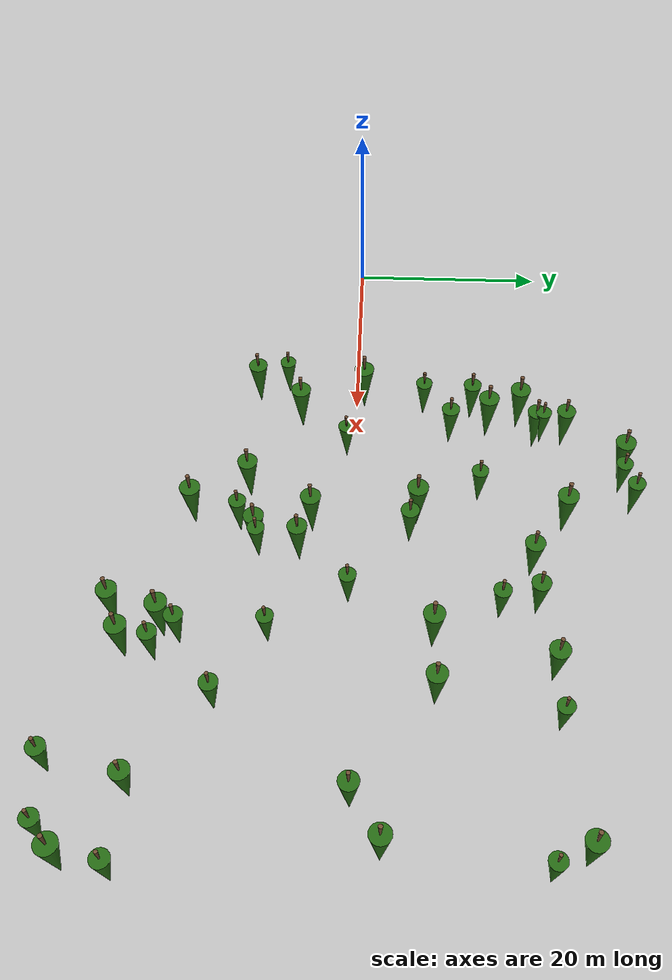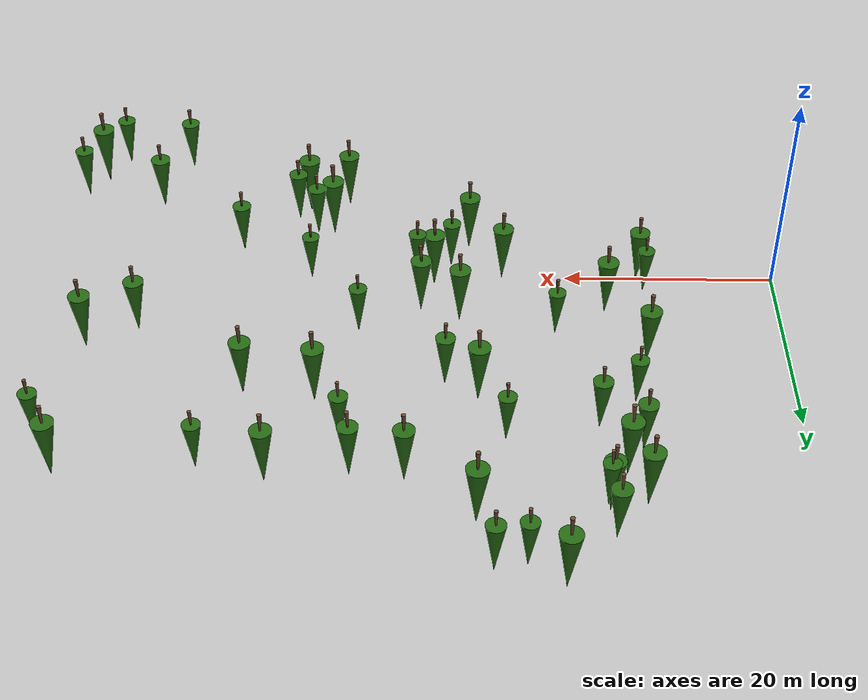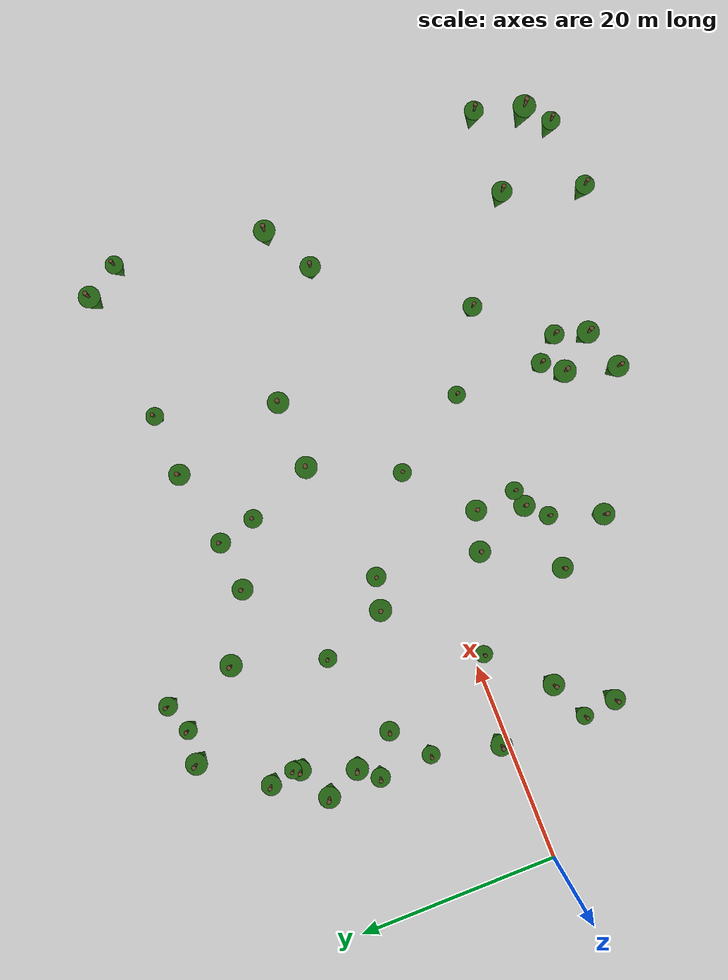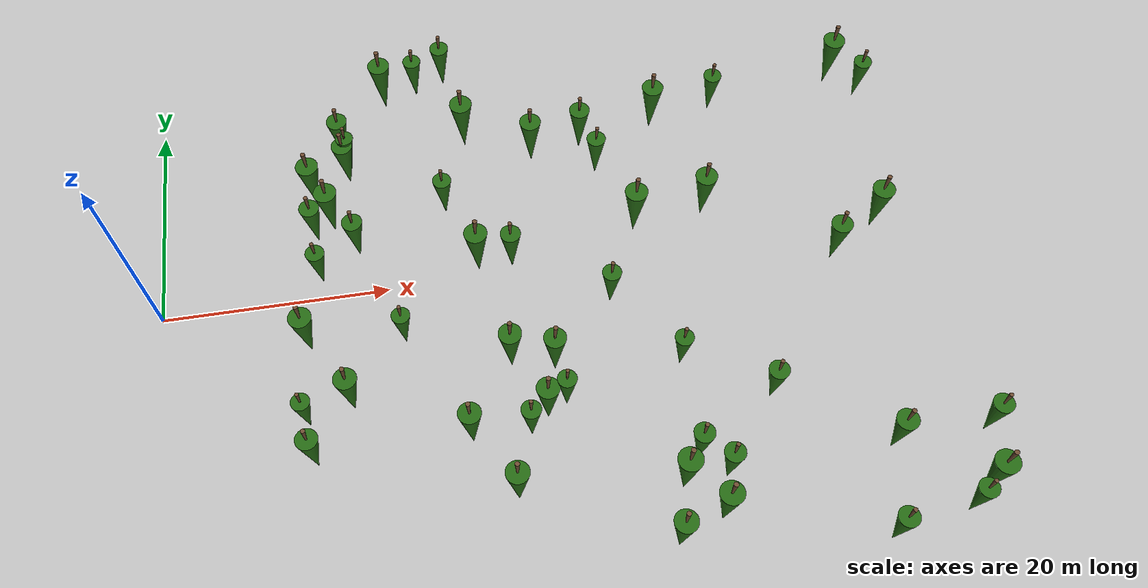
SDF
<sdf version="1.10">
 <model name="lehrforst_trees">
  <static>true</static>
  <link name="tree_0568">
   <collision name="tree_0568_collision">
    <pose>14.127 14.897 -4.623 3.142 0.031 0</pose>
    <geometry><cone><radius>0.231</radius><length>3.696</length></cone></geometry>
   </collision>
   <visual name="tree_0568_trunk">
    <pose>14.127 14.897 -4.623 3.142 0.031 0</pose>
    <geometry><cone><radius>0.231</radius><length>3.696</length></cone></geometry>
    <material>
     <ambient>0.42 0.29 0.19 1</ambient>
     <diffuse>0.42 0.29 0.19 1</diffuse>
     <specular>0.42 0.29 0.19 1</specular>
    </material>
   </visual>
   <visual name="tree_0568_leaves">
    <pose>14.127 14.897 -8.319 3.142 0 0</pose>
    <geometry><cone><radius>1.155</radius><length>6.930</length></cone></geometry>
    <material>
     <ambient>0.14 0.40 0.07 1</ambient>
     <diffuse>0.14 0.40 0.07 1</diffuse>
     <specular>0.14 0.40 0.07 1</specular>
    </material>
   </visual>
  </link>
  <link name="tree_0573">
   <collision name="tree_0573_collision">
    <pose>43.565 -19.042 -2.185 3.142 0.017 0</pose>
    <geometry><cone><radius>0.230</radius><length>3.680</length></cone></geometry>
   </collision>
   <visual name="tree_0573_trunk">
    <pose>43.565 -19.042 -2.185 3.142 0.017 0</pose>
    <geometry><cone><radius>0.230</radius><length>3.680</length></cone></geometry>
    <material>
     <ambient>0.42 0.29 0.19 1</ambient>
     <diffuse>0.42 0.29 0.19 1</diffuse>
     <specular>0.42 0.29 0.19 1</specular>
    </material>
   </visual>
   <visual name="tree_0573_leaves">
    <pose>43.565 -19.042 -5.865 3.142 0 0</pose>
    <geometry><cone><radius>1.150</radius><length>6.900</length></cone></geometry>
    <material>
     <ambient>0.14 0.40 0.07 1</ambient>
     <diffuse>0.14 0.40 0.07 1</diffuse>
     <specular>0.14 0.40 0.07 1</specular>
    </material>
   </visual>
  </link>
  <link name="tree_0576">
   <collision name="tree_0576_collision">
    <pose>28.706 22.664 -3.195 3.142 0.006 0</pose>
    <geometry><cone><radius>0.229</radius><length>3.664</length></cone></geometry>
   </collision>
   <visual name="tree_0576_trunk">
    <pose>28.706 22.664 -3.195 3.142 0.006 0</pose>
    <geometry><cone><radius>0.229</radius><length>3.664</length></cone></geometry>
    <material>
     <ambient>0.42 0.29 0.19 1</ambient>
     <diffuse>0.42 0.29 0.19 1</diffuse>
     <specular>0.42 0.29 0.19 1</specular>
    </material>
   </visual>
   <visual name="tree_0576_leaves">
    <pose>28.706 22.664 -6.859 3.142 0 0</pose>
    <geometry><cone><radius>1.145</radius><length>6.870</length></cone></geometry>
    <material>
     <ambient>0.14 0.40 0.07 1</ambient>
     <diffuse>0.14 0.40 0.07 1</diffuse>
     <specular>0.14 0.40 0.07 1</specular>
    </material>
   </visual>
  </link>
  <link name="tree_0578">
   <collision name="tree_0578_collision">
    <pose>12.466 18.606 -4.920 3.142 0.001 0</pose>
    <geometry><cone><radius>0.228</radius><length>3.648</length></cone></geometry>
   </collision>
   <visual name="tree_0578_trunk">
    <pose>12.466 18.606 -4.920 3.142 0.001 0</pose>
    <geometry><cone><radius>0.228</radius><length>3.648</length></cone></geometry>
    <material>
     <ambient>0.42 0.29 0.19 1</ambient>
     <diffuse>0.42 0.29 0.19 1</diffuse>
     <specular>0.42 0.29 0.19 1</specular>
    </material>
   </visual>
   <visual name="tree_0578_leaves">
    <pose>12.466 18.606 -8.568 3.142 0 0</pose>
    <geometry><cone><radius>1.140</radius><length>6.840</length></cone></geometry>
    <material>
     <ambient>0.14 0.40 0.07 1</ambient>
     <diffuse>0.14 0.40 0.07 1</diffuse>
     <specular>0.14 0.40 0.07 1</specular>
    </material>
   </visual>
  </link>
  <link name="tree_0582">
   <collision name="tree_0582_collision">
    <pose>28.302 6.736 -2.896 3.142 0.034 0</pose>
    <geometry><cone><radius>0.227</radius><length>3.632</length></cone></geometry>
   </collision>
   <visual name="tree_0582_trunk">
    <pose>28.302 6.736 -2.896 3.142 0.034 0</pose>
    <geometry><cone><radius>0.227</radius><length>3.632</length></cone></geometry>
    <material>
     <ambient>0.42 0.29 0.19 1</ambient>
     <diffuse>0.42 0.29 0.19 1</diffuse>
     <specular>0.42 0.29 0.19 1</specular>
    </material>
   </visual>
   <visual name="tree_0582_leaves">
    <pose>28.302 6.736 -6.528 3.142 0 0</pose>
    <geometry><cone><radius>1.135</radius><length>6.810</length></cone></geometry>
    <material>
     <ambient>0.14 0.40 0.07 1</ambient>
     <diffuse>0.14 0.40 0.07 1</diffuse>
     <specular>0.14 0.40 0.07 1</specular>
    </material>
   </visual>
  </link>
  <link name="tree_0584">
   <collision name="tree_0584_collision">
    <pose>20.750 29.673 -3.902 3.142 0.017 0</pose>
    <geometry><cone><radius>0.227</radius><length>3.632</length></cone></geometry>
   </collision>
   <visual name="tree_0584_trunk">
    <pose>20.750 29.673 -3.902 3.142 0.017 0</pose>
    <geometry><cone><radius>0.227</radius><length>3.632</length></cone></geometry>
    <material>
     <ambient>0.42 0.29 0.19 1</ambient>
     <diffuse>0.42 0.29 0.19 1</diffuse>
     <specular>0.42 0.29 0.19 1</specular>
    </material>
   </visual>
   <visual name="tree_0584_leaves">
    <pose>20.750 29.673 -7.534 3.142 0 0</pose>
    <geometry><cone><radius>1.135</radius><length>6.810</length></cone></geometry>
    <material>
     <ambient>0.14 0.40 0.07 1</ambient>
     <diffuse>0.14 0.40 0.07 1</diffuse>
     <specular>0.14 0.40 0.07 1</specular>
    </material>
   </visual>
  </link>
  <link name="tree_0594">
   <collision name="tree_0594_collision">
    <pose>46.289 -22.566 -1.936 3.142 0.033 0</pose>
    <geometry><cone><radius>0.224</radius><length>3.584</length></cone></geometry>
   </collision>
   <visual name="tree_0594_trunk">
    <pose>46.289 -22.566 -1.936 3.142 0.033 0</pose>
    <geometry><cone><radius>0.224</radius><length>3.584</length></cone></geometry>
    <material>
     <ambient>0.42 0.29 0.19 1</ambient>
     <diffuse>0.42 0.29 0.19 1</diffuse>
     <specular>0.42 0.29 0.19 1</specular>
    </material>
   </visual>
   <visual name="tree_0594_leaves">
    <pose>46.289 -22.566 -5.520 3.142 0 0</pose>
    <geometry><cone><radius>1.120</radius><length>6.720</length></cone></geometry>
    <material>
     <ambient>0.14 0.40 0.07 1</ambient>
     <diffuse>0.14 0.40 0.07 1</diffuse>
     <specular>0.14 0.40 0.07 1</specular>
    </material>
   </visual>
  </link>
  <link name="tree_0595">
   <collision name="tree_0595_collision">
    <pose>68.695 -24.364 0.618 3.142 0.027 0</pose>
    <geometry><cone><radius>0.224</radius><length>3.584</length></cone></geometry>
   </collision>
   <visual name="tree_0595_trunk">
    <pose>68.695 -24.364 0.618 3.142 0.027 0</pose>
    <geometry><cone><radius>0.224</radius><length>3.584</length></cone></geometry>
    <material>
     <ambient>0.42 0.29 0.19 1</ambient>
     <diffuse>0.42 0.29 0.19 1</diffuse>
     <specular>0.42 0.29 0.19 1</specular>
    </material>
   </visual>
   <visual name="tree_0595_leaves">
    <pose>68.695 -24.364 -2.966 3.142 0 0</pose>
    <geometry><cone><radius>1.120</radius><length>6.720</length></cone></geometry>
    <material>
     <ambient>0.14 0.40 0.07 1</ambient>
     <diffuse>0.14 0.40 0.07 1</diffuse>
     <specular>0.14 0.40 0.07 1</specular>
    </material>
   </visual>
  </link>
  <link name="tree_0596">
   <collision name="tree_0596_collision">
    <pose>44.225 8.307 -1.860 3.142 0.028 0</pose>
    <geometry><cone><radius>0.224</radius><length>3.584</length></cone></geometry>
   </collision>
   <visual name="tree_0596_trunk">
    <pose>44.225 8.307 -1.860 3.142 0.028 0</pose>
    <geometry><cone><radius>0.224</radius><length>3.584</length></cone></geometry>
    <material>
     <ambient>0.42 0.29 0.19 1</ambient>
     <diffuse>0.42 0.29 0.19 1</diffuse>
     <specular>0.42 0.29 0.19 1</specular>
    </material>
   </visual>
   <visual name="tree_0596_leaves">
    <pose>44.225 8.307 -5.444 3.142 0 0</pose>
    <geometry><cone><radius>1.120</radius><length>6.720</length></cone></geometry>
    <material>
     <ambient>0.14 0.40 0.07 1</ambient>
     <diffuse>0.14 0.40 0.07 1</diffuse>
     <specular>0.14 0.40 0.07 1</specular>
    </material>
   </visual>
  </link>
  <link name="tree_0601">
   <collision name="tree_0601_collision">
    <pose>11.224 0.523 -3.383 3.142 0.004 0</pose>
    <geometry><cone><radius>0.222</radius><length>3.552</length></cone></geometry>
   </collision>
   <visual name="tree_0601_trunk">
    <pose>11.224 0.523 -3.383 3.142 0.004 0</pose>
    <geometry><cone><radius>0.222</radius><length>3.552</length></cone></geometry>
    <material>
     <ambient>0.42 0.29 0.19 1</ambient>
     <diffuse>0.42 0.29 0.19 1</diffuse>
     <specular>0.42 0.29 0.19 1</specular>
    </material>
   </visual>
   <visual name="tree_0601_leaves">
    <pose>11.224 0.523 -6.935 3.142 0 0</pose>
    <geometry><cone><radius>1.110</radius><length>6.660</length></cone></geometry>
    <material>
     <ambient>0.14 0.40 0.07 1</ambient>
     <diffuse>0.14 0.40 0.07 1</diffuse>
     <specular>0.14 0.40 0.07 1</specular>
    </material>
   </visual>
  </link>
  <link name="tree_0604">
   <collision name="tree_0604_collision">
    <pose>28.915 -17.538 -3.061 3.142 0.018 0</pose>
    <geometry><cone><radius>0.221</radius><length>3.536</length></cone></geometry>
   </collision>
   <visual name="tree_0604_trunk">
    <pose>28.915 -17.538 -3.061 3.142 0.018 0</pose>
    <geometry><cone><radius>0.221</radius><length>3.536</length></cone></geometry>
    <material>
     <ambient>0.42 0.29 0.19 1</ambient>
     <diffuse>0.42 0.29 0.19 1</diffuse>
     <specular>0.42 0.29 0.19 1</specular>
    </material>
   </visual>
   <visual name="tree_0604_leaves">
    <pose>28.915 -17.538 -6.597 3.142 0 0</pose>
    <geometry><cone><radius>1.105</radius><length>6.630</length></cone></geometry>
    <material>
     <ambient>0.14 0.40 0.07 1</ambient>
     <diffuse>0.14 0.40 0.07 1</diffuse>
     <specular>0.14 0.40 0.07 1</specular>
    </material>
   </visual>
  </link>
  <link name="tree_0609">
   <collision name="tree_0609_collision">
    <pose>14.981 -6.538 -2.912 3.142 0.031 0</pose>
    <geometry><cone><radius>0.219</radius><length>3.504</length></cone></geometry>
   </collision>
   <visual name="tree_0609_trunk">
    <pose>14.981 -6.538 -2.912 3.142 0.031 0</pose>
    <geometry><cone><radius>0.219</radius><length>3.504</length></cone></geometry>
    <material>
     <ambient>0.42 0.29 0.19 1</ambient>
     <diffuse>0.42 0.29 0.19 1</diffuse>
     <specular>0.42 0.29 0.19 1</specular>
    </material>
   </visual>
   <visual name="tree_0609_leaves">
    <pose>14.981 -6.538 -6.416 3.142 0 0</pose>
    <geometry><cone><radius>1.095</radius><length>6.570</length></cone></geometry>
    <material>
     <ambient>0.14 0.40 0.07 1</ambient>
     <diffuse>0.14 0.40 0.07 1</diffuse>
     <specular>0.14 0.40 0.07 1</specular>
    </material>
   </visual>
  </link>
  <link name="tree_0610">
   <collision name="tree_0610_collision">
    <pose>30.066 -4.597 -2.545 3.142 0.025 0</pose>
    <geometry><cone><radius>0.218</radius><length>3.488</length></cone></geometry>
   </collision>
   <visual name="tree_0610_trunk">
    <pose>30.066 -4.597 -2.545 3.142 0.025 0</pose>
    <geometry><cone><radius>0.218</radius><length>3.488</length></cone></geometry>
    <material>
     <ambient>0.42 0.29 0.19 1</ambient>
     <diffuse>0.42 0.29 0.19 1</diffuse>
     <specular>0.42 0.29 0.19 1</specular>
    </material>
   </visual>
   <visual name="tree_0610_leaves">
    <pose>30.066 -4.597 -6.033 3.142 0 0</pose>
    <geometry><cone><radius>1.090</radius><length>6.540</length></cone></geometry>
    <material>
     <ambient>0.14 0.40 0.07 1</ambient>
     <diffuse>0.14 0.40 0.07 1</diffuse>
     <specular>0.14 0.40 0.07 1</specular>
    </material>
   </visual>
  </link>
  <link name="tree_0619">
   <collision name="tree_0619_collision">
    <pose>32.661 -10.408 -2.608 3.142 0.024 0</pose>
    <geometry><cone><radius>0.217</radius><length>3.472</length></cone></geometry>
   </collision>
   <visual name="tree_0619_trunk">
    <pose>32.661 -10.408 -2.608 3.142 0.024 0</pose>
    <geometry><cone><radius>0.217</radius><length>3.472</length></cone></geometry>
    <material>
     <ambient>0.42 0.29 0.19 1</ambient>
     <diffuse>0.42 0.29 0.19 1</diffuse>
     <specular>0.42 0.29 0.19 1</specular>
    </material>
   </visual>
   <visual name="tree_0619_leaves">
    <pose>32.661 -10.408 -6.080 3.142 0 0</pose>
    <geometry><cone><radius>1.085</radius><length>6.510</length></cone></geometry>
    <material>
     <ambient>0.14 0.40 0.07 1</ambient>
     <diffuse>0.14 0.40 0.07 1</diffuse>
     <specular>0.14 0.40 0.07 1</specular>
    </material>
   </visual>
  </link>
  <link name="tree_0623">
   <collision name="tree_0623_collision">
    <pose>42.082 -24.192 -2.428 3.142 0.012 0</pose>
    <geometry><cone><radius>0.217</radius><length>3.472</length></cone></geometry>
   </collision>
   <visual name="tree_0623_trunk">
    <pose>42.082 -24.192 -2.428 3.142 0.012 0</pose>
    <geometry><cone><radius>0.217</radius><length>3.472</length></cone></geometry>
    <material>
     <ambient>0.42 0.29 0.19 1</ambient>
     <diffuse>0.42 0.29 0.19 1</diffuse>
     <specular>0.42 0.29 0.19 1</specular>
    </material>
   </visual>
   <visual name="tree_0623_leaves">
    <pose>42.082 -24.192 -5.900 3.142 0 0</pose>
    <geometry><cone><radius>1.085</radius><length>6.510</length></cone></geometry>
    <material>
     <ambient>0.14 0.40 0.07 1</ambient>
     <diffuse>0.14 0.40 0.07 1</diffuse>
     <specular>0.14 0.40 0.07 1</specular>
    </material>
   </visual>
  </link>
  <link name="tree_0628">
   <collision name="tree_0628_collision">
    <pose>51.094 8.477 -1.050 3.142 0.020 0</pose>
    <geometry><cone><radius>0.216</radius><length>3.456</length></cone></geometry>
   </collision>
   <visual name="tree_0628_trunk">
    <pose>51.094 8.477 -1.050 3.142 0.020 0</pose>
    <geometry><cone><radius>0.216</radius><length>3.456</length></cone></geometry>
    <material>
     <ambient>0.42 0.29 0.19 1</ambient>
     <diffuse>0.42 0.29 0.19 1</diffuse>
     <specular>0.42 0.29 0.19 1</specular>
    </material>
   </visual>
   <visual name="tree_0628_leaves">
    <pose>51.094 8.477 -4.506 3.142 0 0</pose>
    <geometry><cone><radius>1.080</radius><length>6.480</length></cone></geometry>
    <material>
     <ambient>0.14 0.40 0.07 1</ambient>
     <diffuse>0.14 0.40 0.07 1</diffuse>
     <specular>0.14 0.40 0.07 1</specular>
    </material>
   </visual>
  </link>
  <link name="tree_0630">
   <collision name="tree_0630_collision">
    <pose>67.145 21.577 0.844 3.142 0.005 0</pose>
    <geometry><cone><radius>0.216</radius><length>3.456</length></cone></geometry>
   </collision>
   <visual name="tree_0630_trunk">
    <pose>67.145 21.577 0.844 3.142 0.005 0</pose>
    <geometry><cone><radius>0.216</radius><length>3.456</length></cone></geometry>
    <material>
     <ambient>0.42 0.29 0.19 1</ambient>
     <diffuse>0.42 0.29 0.19 1</diffuse>
     <specular>0.42 0.29 0.19 1</specular>
    </material>
   </visual>
   <visual name="tree_0630_leaves">
    <pose>67.145 21.577 -2.612 3.142 0 0</pose>
    <geometry><cone><radius>1.080</radius><length>6.480</length></cone></geometry>
    <material>
     <ambient>0.14 0.40 0.07 1</ambient>
     <diffuse>0.14 0.40 0.07 1</diffuse>
     <specular>0.14 0.40 0.07 1</specular>
    </material>
   </visual>
  </link>
  <link name="tree_0634">
   <collision name="tree_0634_collision">
    <pose>25.523 -11.660 -2.693 3.142 0.000 0</pose>
    <geometry><cone><radius>0.215</radius><length>3.440</length></cone></geometry>
   </collision>
   <visual name="tree_0634_trunk">
    <pose>25.523 -11.660 -2.693 3.142 0.000 0</pose>
    <geometry><cone><radius>0.215</radius><length>3.440</length></cone></geometry>
    <material>
     <ambient>0.42 0.29 0.19 1</ambient>
     <diffuse>0.42 0.29 0.19 1</diffuse>
     <specular>0.42 0.29 0.19 1</specular>
    </material>
   </visual>
   <visual name="tree_0634_leaves">
    <pose>25.523 -11.660 -6.133 3.142 0 0</pose>
    <geometry><cone><radius>1.075</radius><length>6.450</length></cone></geometry>
    <material>
     <ambient>0.14 0.40 0.07 1</ambient>
     <diffuse>0.14 0.40 0.07 1</diffuse>
     <specular>0.14 0.40 0.07 1</specular>
    </material>
   </visual>
  </link>
  <link name="tree_0635">
   <collision name="tree_0635_collision">
    <pose>66.931 3.492 0.298 3.142 0.035 0</pose>
    <geometry><cone><radius>0.215</radius><length>3.440</length></cone></geometry>
   </collision>
   <visual name="tree_0635_trunk">
    <pose>66.931 3.492 0.298 3.142 0.035 0</pose>
    <geometry><cone><radius>0.215</radius><length>3.440</length></cone></geometry>
    <material>
     <ambient>0.42 0.29 0.19 1</ambient>
     <diffuse>0.42 0.29 0.19 1</diffuse>
     <specular>0.42 0.29 0.19 1</specular>
    </material>
   </visual>
   <visual name="tree_0635_leaves">
    <pose>66.931 3.492 -3.142 3.142 0 0</pose>
    <geometry><cone><radius>1.075</radius><length>6.450</length></cone></geometry>
    <material>
     <ambient>0.14 0.40 0.07 1</ambient>
     <diffuse>0.14 0.40 0.07 1</diffuse>
     <specular>0.14 0.40 0.07 1</specular>
    </material>
   </visual>
  </link>
  <link name="tree_0636">
   <collision name="tree_0636_collision">
    <pose>48.155 20.127 -1.238 3.142 0.001 0</pose>
    <geometry><cone><radius>0.214</radius><length>3.424</length></cone></geometry>
   </collision>
   <visual name="tree_0636_trunk">
    <pose>48.155 20.127 -1.238 3.142 0.001 0</pose>
    <geometry><cone><radius>0.214</radius><length>3.424</length></cone></geometry>
    <material>
     <ambient>0.42 0.29 0.19 1</ambient>
     <diffuse>0.42 0.29 0.19 1</diffuse>
     <specular>0.42 0.29 0.19 1</specular>
    </material>
   </visual>
   <visual name="tree_0636_leaves">
    <pose>48.155 20.127 -4.662 3.142 0 0</pose>
    <geometry><cone><radius>1.070</radius><length>6.420</length></cone></geometry>
    <material>
     <ambient>0.14 0.40 0.07 1</ambient>
     <diffuse>0.14 0.40 0.07 1</diffuse>
     <specular>0.14 0.40 0.07 1</specular>
    </material>
   </visual>
  </link>
  <link name="tree_0638">
   <collision name="tree_0638_collision">
    <pose>34.020 -5.760 -2.354 3.142 0.036 0</pose>
    <geometry><cone><radius>0.213</radius><length>3.408</length></cone></geometry>
   </collision>
   <visual name="tree_0638_trunk">
    <pose>34.020 -5.760 -2.354 3.142 0.036 0</pose>
    <geometry><cone><radius>0.213</radius><length>3.408</length></cone></geometry>
    <material>
     <ambient>0.42 0.29 0.19 1</ambient>
     <diffuse>0.42 0.29 0.19 1</diffuse>
     <specular>0.42 0.29 0.19 1</specular>
    </material>
   </visual>
   <visual name="tree_0638_leaves">
    <pose>34.020 -5.760 -5.762 3.142 0 0</pose>
    <geometry><cone><radius>1.065</radius><length>6.390</length></cone></geometry>
    <material>
     <ambient>0.14 0.40 0.07 1</ambient>
     <diffuse>0.14 0.40 0.07 1</diffuse>
     <specular>0.14 0.40 0.07 1</specular>
    </material>
   </visual>
  </link>
  <link name="tree_0639">
   <collision name="tree_0639_collision">
    <pose>35.350 18.680 -2.416 3.142 0.011 0</pose>
    <geometry><cone><radius>0.213</radius><length>3.408</length></cone></geometry>
   </collision>
   <visual name="tree_0639_trunk">
    <pose>35.350 18.680 -2.416 3.142 0.011 0</pose>
    <geometry><cone><radius>0.213</radius><length>3.408</length></cone></geometry>
    <material>
     <ambient>0.42 0.29 0.19 1</ambient>
     <diffuse>0.42 0.29 0.19 1</diffuse>
     <specular>0.42 0.29 0.19 1</specular>
    </material>
   </visual>
   <visual name="tree_0639_leaves">
    <pose>35.350 18.680 -5.824 3.142 0 0</pose>
    <geometry><cone><radius>1.065</radius><length>6.390</length></cone></geometry>
    <material>
     <ambient>0.14 0.40 0.07 1</ambient>
     <diffuse>0.14 0.40 0.07 1</diffuse>
     <specular>0.14 0.40 0.07 1</specular>
    </material>
   </visual>
  </link>
  <link name="tree_0641">
   <collision name="tree_0641_collision">
    <pose>16.179 20.229 -4.449 3.142 0.003 0</pose>
    <geometry><cone><radius>0.213</radius><length>3.408</length></cone></geometry>
   </collision>
   <visual name="tree_0641_trunk">
    <pose>16.179 20.229 -4.449 3.142 0.003 0</pose>
    <geometry><cone><radius>0.213</radius><length>3.408</length></cone></geometry>
    <material>
     <ambient>0.42 0.29 0.19 1</ambient>
     <diffuse>0.42 0.29 0.19 1</diffuse>
     <specular>0.42 0.29 0.19 1</specular>
    </material>
   </visual>
   <visual name="tree_0641_leaves">
    <pose>16.179 20.229 -7.857 3.142 0 0</pose>
    <geometry><cone><radius>1.065</radius><length>6.390</length></cone></geometry>
    <material>
     <ambient>0.14 0.40 0.07 1</ambient>
     <diffuse>0.14 0.40 0.07 1</diffuse>
     <specular>0.14 0.40 0.07 1</specular>
    </material>
   </visual>
  </link>
  <link name="tree_0653">
   <collision name="tree_0653_collision">
    <pose>15.845 23.576 -4.614 3.142 0.029 0</pose>
    <geometry><cone><radius>0.210</radius><length>3.360</length></cone></geometry>
   </collision>
   <visual name="tree_0653_trunk">
    <pose>15.845 23.576 -4.614 3.142 0.029 0</pose>
    <geometry><cone><radius>0.210</radius><length>3.360</length></cone></geometry>
    <material>
     <ambient>0.42 0.29 0.19 1</ambient>
     <diffuse>0.42 0.29 0.19 1</diffuse>
     <specular>0.42 0.29 0.19 1</specular>
    </material>
   </visual>
   <visual name="tree_0653_leaves">
    <pose>15.845 23.576 -7.974 3.142 0 0</pose>
    <geometry><cone><radius>1.050</radius><length>6.300</length></cone></geometry>
    <material>
     <ambient>0.14 0.40 0.07 1</ambient>
     <diffuse>0.14 0.40 0.07 1</diffuse>
     <specular>0.14 0.40 0.07 1</specular>
    </material>
   </visual>
  </link>
  <link name="tree_0657">
   <collision name="tree_0657_collision">
    <pose>11.312 -11.705 -3.062 3.142 0.025 0</pose>
    <geometry><cone><radius>0.208</radius><length>3.328</length></cone></geometry>
   </collision>
   <visual name="tree_0657_trunk">
    <pose>11.312 -11.705 -3.062 3.142 0.025 0</pose>
    <geometry><cone><radius>0.208</radius><length>3.328</length></cone></geometry>
    <material>
     <ambient>0.42 0.29 0.19 1</ambient>
     <diffuse>0.42 0.29 0.19 1</diffuse>
     <specular>0.42 0.29 0.19 1</specular>
    </material>
   </visual>
   <visual name="tree_0657_leaves">
    <pose>11.312 -11.705 -6.390 3.142 0 0</pose>
    <geometry><cone><radius>1.040</radius><length>6.240</length></cone></geometry>
    <material>
     <ambient>0.14 0.40 0.07 1</ambient>
     <diffuse>0.14 0.40 0.07 1</diffuse>
     <specular>0.14 0.40 0.07 1</specular>
    </material>
   </visual>
  </link>
  <link name="tree_0666">
   <collision name="tree_0666_collision">
    <pose>62.139 0.635 -0.196 3.142 0.012 0</pose>
    <geometry><cone><radius>0.204</radius><length>3.264</length></cone></geometry>
   </collision>
   <visual name="tree_0666_trunk">
    <pose>62.139 0.635 -0.196 3.142 0.012 0</pose>
    <geometry><cone><radius>0.204</radius><length>3.264</length></cone></geometry>
    <material>
     <ambient>0.42 0.29 0.19 1</ambient>
     <diffuse>0.42 0.29 0.19 1</diffuse>
     <specular>0.42 0.29 0.19 1</specular>
    </material>
   </visual>
   <visual name="tree_0666_leaves">
    <pose>62.139 0.635 -3.460 3.142 0 0</pose>
    <geometry><cone><radius>1.020</radius><length>6.120</length></cone></geometry>
    <material>
     <ambient>0.14 0.40 0.07 1</ambient>
     <diffuse>0.14 0.40 0.07 1</diffuse>
     <specular>0.14 0.40 0.07 1</specular>
    </material>
   </visual>
  </link>
  <link name="tree_0667">
   <collision name="tree_0667_collision">
    <pose>40.434 18.922 -1.846 3.142 0.019 0</pose>
    <geometry><cone><radius>0.203</radius><length>3.248</length></cone></geometry>
   </collision>
   <visual name="tree_0667_trunk">
    <pose>40.434 18.922 -1.846 3.142 0.019 0</pose>
    <geometry><cone><radius>0.203</radius><length>3.248</length></cone></geometry>
    <material>
     <ambient>0.42 0.29 0.19 1</ambient>
     <diffuse>0.42 0.29 0.19 1</diffuse>
     <specular>0.42 0.29 0.19 1</specular>
    </material>
   </visual>
   <visual name="tree_0667_leaves">
    <pose>40.434 18.922 -5.094 3.142 0 0</pose>
    <geometry><cone><radius>1.015</radius><length>6.090</length></cone></geometry>
    <material>
     <ambient>0.14 0.40 0.07 1</ambient>
     <diffuse>0.14 0.40 0.07 1</diffuse>
     <specular>0.14 0.40 0.07 1</specular>
    </material>
   </visual>
  </link>
  <link name="tree_0670">
   <collision name="tree_0670_collision">
    <pose>61.916 -19.347 0.225 3.142 0.030 0</pose>
    <geometry><cone><radius>0.202</radius><length>3.232</length></cone></geometry>
   </collision>
   <visual name="tree_0670_trunk">
    <pose>61.916 -19.347 0.225 3.142 0.030 0</pose>
    <geometry><cone><radius>0.202</radius><length>3.232</length></cone></geometry>
    <material>
     <ambient>0.42 0.29 0.19 1</ambient>
     <diffuse>0.42 0.29 0.19 1</diffuse>
     <specular>0.42 0.29 0.19 1</specular>
    </material>
   </visual>
   <visual name="tree_0670_leaves">
    <pose>61.916 -19.347 -3.007 3.142 0 0</pose>
    <geometry><cone><radius>1.010</radius><length>6.060</length></cone></geometry>
    <material>
     <ambient>0.14 0.40 0.07 1</ambient>
     <diffuse>0.14 0.40 0.07 1</diffuse>
     <specular>0.14 0.40 0.07 1</specular>
    </material>
   </visual>
  </link>
  <link name="tree_0674">
   <collision name="tree_0674_collision">
    <pose>12.557 13.000 -4.220 3.142 0.004 0</pose>
    <geometry><cone><radius>0.201</radius><length>3.216</length></cone></geometry>
   </collision>
   <visual name="tree_0674_trunk">
    <pose>12.557 13.000 -4.220 3.142 0.004 0</pose>
    <geometry><cone><radius>0.201</radius><length>3.216</length></cone></geometry>
    <material>
     <ambient>0.42 0.29 0.19 1</ambient>
     <diffuse>0.42 0.29 0.19 1</diffuse>
     <specular>0.42 0.29 0.19 1</specular>
    </material>
   </visual>
   <visual name="tree_0674_leaves">
    <pose>12.557 13.000 -7.436 3.142 0 0</pose>
    <geometry><cone><radius>1.005</radius><length>6.030</length></cone></geometry>
    <material>
     <ambient>0.14 0.40 0.07 1</ambient>
     <diffuse>0.14 0.40 0.07 1</diffuse>
     <specular>0.14 0.40 0.07 1</specular>
    </material>
   </visual>
  </link>
  <link name="tree_0677">
   <collision name="tree_0677_collision">
    <pose>16.637 10.419 -3.776 3.142 0.018 0</pose>
    <geometry><cone><radius>0.201</radius><length>3.216</length></cone></geometry>
   </collision>
   <visual name="tree_0677_trunk">
    <pose>16.637 10.419 -3.776 3.142 0.018 0</pose>
    <geometry><cone><radius>0.201</radius><length>3.216</length></cone></geometry>
    <material>
     <ambient>0.42 0.29 0.19 1</ambient>
     <diffuse>0.42 0.29 0.19 1</diffuse>
     <specular>0.42 0.29 0.19 1</specular>
    </material>
   </visual>
   <visual name="tree_0677_leaves">
    <pose>16.637 10.419 -6.992 3.142 0 0</pose>
    <geometry><cone><radius>1.005</radius><length>6.030</length></cone></geometry>
    <material>
     <ambient>0.14 0.40 0.07 1</ambient>
     <diffuse>0.14 0.40 0.07 1</diffuse>
     <specular>0.14 0.40 0.07 1</specular>
    </material>
   </visual>
  </link>
  <link name="tree_0682">
   <collision name="tree_0682_collision">
    <pose>31.574 5.897 -2.506 3.142 0.002 0</pose>
    <geometry><cone><radius>0.198</radius><length>3.168</length></cone></geometry>
   </collision>
   <visual name="tree_0682_trunk">
    <pose>31.574 5.897 -2.506 3.142 0.002 0</pose>
    <geometry><cone><radius>0.198</radius><length>3.168</length></cone></geometry>
    <material>
     <ambient>0.42 0.29 0.19 1</ambient>
     <diffuse>0.42 0.29 0.19 1</diffuse>
     <specular>0.42 0.29 0.19 1</specular>
    </material>
   </visual>
   <visual name="tree_0682_leaves">
    <pose>31.574 5.897 -5.674 3.142 0 0</pose>
    <geometry><cone><radius>0.990</radius><length>5.940</length></cone></geometry>
    <material>
     <ambient>0.14 0.40 0.07 1</ambient>
     <diffuse>0.14 0.40 0.07 1</diffuse>
     <specular>0.14 0.40 0.07 1</specular>
    </material>
   </visual>
  </link>
  <link name="tree_0692">
   <collision name="tree_0692_collision">
    <pose>45.166 -17.048 -1.732 3.142 0.023 0</pose>
    <geometry><cone><radius>0.194</radius><length>3.104</length></cone></geometry>
   </collision>
   <visual name="tree_0692_trunk">
    <pose>45.166 -17.048 -1.732 3.142 0.023 0</pose>
    <geometry><cone><radius>0.194</radius><length>3.104</length></cone></geometry>
    <material>
     <ambient>0.42 0.29 0.19 1</ambient>
     <diffuse>0.42 0.29 0.19 1</diffuse>
     <specular>0.42 0.29 0.19 1</specular>
    </material>
   </visual>
   <visual name="tree_0692_leaves">
    <pose>45.166 -17.048 -4.836 3.142 0 0</pose>
    <geometry><cone><radius>0.970</radius><length>5.820</length></cone></geometry>
    <material>
     <ambient>0.14 0.40 0.07 1</ambient>
     <diffuse>0.14 0.40 0.07 1</diffuse>
     <specular>0.14 0.40 0.07 1</specular>
    </material>
   </visual>
  </link>
  <link name="tree_0693">
   <collision name="tree_0693_collision">
    <pose>47.276 -19.273 -1.481 3.142 0.015 0</pose>
    <geometry><cone><radius>0.194</radius><length>3.104</length></cone></geometry>
   </collision>
   <visual name="tree_0693_trunk">
    <pose>47.276 -19.273 -1.481 3.142 0.015 0</pose>
    <geometry><cone><radius>0.194</radius><length>3.104</length></cone></geometry>
    <material>
     <ambient>0.42 0.29 0.19 1</ambient>
     <diffuse>0.42 0.29 0.19 1</diffuse>
     <specular>0.42 0.29 0.19 1</specular>
    </material>
   </visual>
   <visual name="tree_0693_leaves">
    <pose>47.276 -19.273 -4.585 3.142 0 0</pose>
    <geometry><cone><radius>0.970</radius><length>5.820</length></cone></geometry>
    <material>
     <ambient>0.14 0.40 0.07 1</ambient>
     <diffuse>0.14 0.40 0.07 1</diffuse>
     <specular>0.14 0.40 0.07 1</specular>
    </material>
   </visual>
  </link>
  <link name="tree_0697">
   <collision name="tree_0697_collision">
    <pose>27.299 29.911 -2.634 3.142 0.027 0</pose>
    <geometry><cone><radius>0.192</radius><length>3.072</length></cone></geometry>
   </collision>
   <visual name="tree_0697_trunk">
    <pose>27.299 29.911 -2.634 3.142 0.027 0</pose>
    <geometry><cone><radius>0.192</radius><length>3.072</length></cone></geometry>
    <material>
     <ambient>0.42 0.29 0.19 1</ambient>
     <diffuse>0.42 0.29 0.19 1</diffuse>
     <specular>0.42 0.29 0.19 1</specular>
    </material>
   </visual>
   <visual name="tree_0697_leaves">
    <pose>27.299 29.911 -5.706 3.142 0 0</pose>
    <geometry><cone><radius>0.960</radius><length>5.760</length></cone></geometry>
    <material>
     <ambient>0.14 0.40 0.07 1</ambient>
     <diffuse>0.14 0.40 0.07 1</diffuse>
     <specular>0.14 0.40 0.07 1</specular>
    </material>
   </visual>
  </link>
  <link name="tree_0702">
   <collision name="tree_0702_collision">
    <pose>59.656 -27.268 -0.483 3.142 0.022 0</pose>
    <geometry><cone><radius>0.191</radius><length>3.056</length></cone></geometry>
   </collision>
   <visual name="tree_0702_trunk">
    <pose>59.656 -27.268 -0.483 3.142 0.022 0</pose>
    <geometry><cone><radius>0.191</radius><length>3.056</length></cone></geometry>
    <material>
     <ambient>0.42 0.29 0.19 1</ambient>
     <diffuse>0.42 0.29 0.19 1</diffuse>
     <specular>0.42 0.29 0.19 1</specular>
    </material>
   </visual>
   <visual name="tree_0702_leaves">
    <pose>59.656 -27.268 -3.539 3.142 0 0</pose>
    <geometry><cone><radius>0.955</radius><length>5.730</length></cone></geometry>
    <material>
     <ambient>0.14 0.40 0.07 1</ambient>
     <diffuse>0.14 0.40 0.07 1</diffuse>
     <specular>0.14 0.40 0.07 1</specular>
    </material>
   </visual>
  </link>
  <link name="tree_0703">
   <collision name="tree_0703_collision">
    <pose>52.725 -12.697 -0.849 3.142 0.003 0</pose>
    <geometry><cone><radius>0.190</radius><length>3.040</length></cone></geometry>
   </collision>
   <visual name="tree_0703_trunk">
    <pose>52.725 -12.697 -0.849 3.142 0.003 0</pose>
    <geometry><cone><radius>0.190</radius><length>3.040</length></cone></geometry>
    <material>
     <ambient>0.42 0.29 0.19 1</ambient>
     <diffuse>0.42 0.29 0.19 1</diffuse>
     <specular>0.42 0.29 0.19 1</specular>
    </material>
   </visual>
   <visual name="tree_0703_leaves">
    <pose>52.725 -12.697 -3.889 3.142 0 0</pose>
    <geometry><cone><radius>0.950</radius><length>5.700</length></cone></geometry>
    <material>
     <ambient>0.14 0.40 0.07 1</ambient>
     <diffuse>0.14 0.40 0.07 1</diffuse>
     <specular>0.14 0.40 0.07 1</specular>
    </material>
   </visual>
  </link>
  <link name="tree_0709">
   <collision name="tree_0709_collision">
    <pose>69.961 -19.546 1.116 3.142 0.019 0</pose>
    <geometry><cone><radius>0.188</radius><length>3.008</length></cone></geometry>
   </collision>
   <visual name="tree_0709_trunk">
    <pose>69.961 -19.546 1.116 3.142 0.019 0</pose>
    <geometry><cone><radius>0.188</radius><length>3.008</length></cone></geometry>
    <material>
     <ambient>0.42 0.29 0.19 1</ambient>
     <diffuse>0.42 0.29 0.19 1</diffuse>
     <specular>0.42 0.29 0.19 1</specular>
    </material>
   </visual>
   <visual name="tree_0709_leaves">
    <pose>69.961 -19.546 -1.892 3.142 0 0</pose>
    <geometry><cone><radius>0.940</radius><length>5.640</length></cone></geometry>
    <material>
     <ambient>0.14 0.40 0.07 1</ambient>
     <diffuse>0.14 0.40 0.07 1</diffuse>
     <specular>0.14 0.40 0.07 1</specular>
    </material>
   </visual>
  </link>
  <link name="tree_0712">
   <collision name="tree_0712_collision">
    <pose>41.455 15.041 -1.725 3.142 0.025 0</pose>
    <geometry><cone><radius>0.187</radius><length>2.992</length></cone></geometry>
   </collision>
   <visual name="tree_0712_trunk">
    <pose>41.455 15.041 -1.725 3.142 0.025 0</pose>
    <geometry><cone><radius>0.187</radius><length>2.992</length></cone></geometry>
    <material>
     <ambient>0.42 0.29 0.19 1</ambient>
     <diffuse>0.42 0.29 0.19 1</diffuse>
     <specular>0.42 0.29 0.19 1</specular>
    </material>
   </visual>
   <visual name="tree_0712_leaves">
    <pose>41.455 15.041 -4.717 3.142 0 0</pose>
    <geometry><cone><radius>0.935</radius><length>5.610</length></cone></geometry>
    <material>
     <ambient>0.14 0.40 0.07 1</ambient>
     <diffuse>0.14 0.40 0.07 1</diffuse>
     <specular>0.14 0.40 0.07 1</specular>
    </material>
   </visual>
  </link>
  <link name="tree_0715">
   <collision name="tree_0715_collision">
    <pose>30.883 -12.247 -2.533 3.142 0.009 0</pose>
    <geometry><cone><radius>0.186</radius><length>2.976</length></cone></geometry>
   </collision>
   <visual name="tree_0715_trunk">
    <pose>30.883 -12.247 -2.533 3.142 0.009 0</pose>
    <geometry><cone><radius>0.186</radius><length>2.976</length></cone></geometry>
    <material>
     <ambient>0.42 0.29 0.19 1</ambient>
     <diffuse>0.42 0.29 0.19 1</diffuse>
     <specular>0.42 0.29 0.19 1</specular>
    </material>
   </visual>
   <visual name="tree_0715_leaves">
    <pose>30.883 -12.247 -5.509 3.142 0 0</pose>
    <geometry><cone><radius>0.930</radius><length>5.580</length></cone></geometry>
    <material>
     <ambient>0.14 0.40 0.07 1</ambient>
     <diffuse>0.14 0.40 0.07 1</diffuse>
     <specular>0.14 0.40 0.07 1</specular>
    </material>
   </visual>
  </link>
  <link name="tree_0718">
   <collision name="tree_0718_collision">
    <pose>12.912 7.428 -3.711 3.142 0.003 0</pose>
    <geometry><cone><radius>0.184</radius><length>2.944</length></cone></geometry>
   </collision>
   <visual name="tree_0718_trunk">
    <pose>12.912 7.428 -3.711 3.142 0.003 0</pose>
    <geometry><cone><radius>0.184</radius><length>2.944</length></cone></geometry>
    <material>
     <ambient>0.42 0.29 0.19 1</ambient>
     <diffuse>0.42 0.29 0.19 1</diffuse>
     <specular>0.42 0.29 0.19 1</specular>
    </material>
   </visual>
   <visual name="tree_0718_leaves">
    <pose>12.912 7.428 -6.655 3.142 0 0</pose>
    <geometry><cone><radius>0.920</radius><length>5.520</length></cone></geometry>
    <material>
     <ambient>0.14 0.40 0.07 1</ambient>
     <diffuse>0.14 0.40 0.07 1</diffuse>
     <specular>0.14 0.40 0.07 1</specular>
    </material>
   </visual>
  </link>
  <link name="tree_0719">
   <collision name="tree_0719_collision">
    <pose>25.787 13.408 -3.086 3.142 0.006 0</pose>
    <geometry><cone><radius>0.184</radius><length>2.944</length></cone></geometry>
   </collision>
   <visual name="tree_0719_trunk">
    <pose>25.787 13.408 -3.086 3.142 0.006 0</pose>
    <geometry><cone><radius>0.184</radius><length>2.944</length></cone></geometry>
    <material>
     <ambient>0.42 0.29 0.19 1</ambient>
     <diffuse>0.42 0.29 0.19 1</diffuse>
     <specular>0.42 0.29 0.19 1</specular>
    </material>
   </visual>
   <visual name="tree_0719_leaves">
    <pose>25.787 13.408 -6.030 3.142 0 0</pose>
    <geometry><cone><radius>0.920</radius><length>5.520</length></cone></geometry>
    <material>
     <ambient>0.14 0.40 0.07 1</ambient>
     <diffuse>0.14 0.40 0.07 1</diffuse>
     <specular>0.14 0.40 0.07 1</specular>
    </material>
   </visual>
  </link>
  <link name="tree_0720">
   <collision name="tree_0720_collision">
    <pose>24.287 29.037 -3.147 3.142 0.027 0</pose>
    <geometry><cone><radius>0.184</radius><length>2.944</length></cone></geometry>
   </collision>
   <visual name="tree_0720_trunk">
    <pose>24.287 29.037 -3.147 3.142 0.027 0</pose>
    <geometry><cone><radius>0.184</radius><length>2.944</length></cone></geometry>
    <material>
     <ambient>0.42 0.29 0.19 1</ambient>
     <diffuse>0.42 0.29 0.19 1</diffuse>
     <specular>0.42 0.29 0.19 1</specular>
    </material>
   </visual>
   <visual name="tree_0720_leaves">
    <pose>24.287 29.037 -6.091 3.142 0 0</pose>
    <geometry><cone><radius>0.920</radius><length>5.520</length></cone></geometry>
    <material>
     <ambient>0.14 0.40 0.07 1</ambient>
     <diffuse>0.14 0.40 0.07 1</diffuse>
     <specular>0.14 0.40 0.07 1</specular>
    </material>
   </visual>
  </link>
  <link name="tree_0721">
   <collision name="tree_0721_collision">
    <pose>66.464 -26.240 0.498 3.142 0.018 0</pose>
    <geometry><cone><radius>0.183</radius><length>2.928</length></cone></geometry>
   </collision>
   <visual name="tree_0721_trunk">
    <pose>66.464 -26.240 0.498 3.142 0.018 0</pose>
    <geometry><cone><radius>0.183</radius><length>2.928</length></cone></geometry>
    <material>
     <ambient>0.42 0.29 0.19 1</ambient>
     <diffuse>0.42 0.29 0.19 1</diffuse>
     <specular>0.42 0.29 0.19 1</specular>
    </material>
   </visual>
   <visual name="tree_0721_leaves">
    <pose>66.464 -26.240 -2.430 3.142 0 0</pose>
    <geometry><cone><radius>0.915</radius><length>5.490</length></cone></geometry>
    <material>
     <ambient>0.14 0.40 0.07 1</ambient>
     <diffuse>0.14 0.40 0.07 1</diffuse>
     <specular>0.14 0.40 0.07 1</specular>
    </material>
   </visual>
  </link>
  <link name="tree_0724">
   <collision name="tree_0724_collision">
    <pose>40.209 -0.319 -1.601 3.142 0.017 0</pose>
    <geometry><cone><radius>0.182</radius><length>2.912</length></cone></geometry>
   </collision>
   <visual name="tree_0724_trunk">
    <pose>40.209 -0.319 -1.601 3.142 0.017 0</pose>
    <geometry><cone><radius>0.182</radius><length>2.912</length></cone></geometry>
    <material>
     <ambient>0.42 0.29 0.19 1</ambient>
     <diffuse>0.42 0.29 0.19 1</diffuse>
     <specular>0.42 0.29 0.19 1</specular>
    </material>
   </visual>
   <visual name="tree_0724_leaves">
    <pose>40.209 -0.319 -4.513 3.142 0 0</pose>
    <geometry><cone><radius>0.910</radius><length>5.460</length></cone></geometry>
    <material>
     <ambient>0.14 0.40 0.07 1</ambient>
     <diffuse>0.14 0.40 0.07 1</diffuse>
     <specular>0.14 0.40 0.07 1</specular>
    </material>
   </visual>
  </link>
  <link name="tree_0726">
   <collision name="tree_0726_collision">
    <pose>34.435 -9.975 -2.238 3.142 0.018 0</pose>
    <geometry><cone><radius>0.181</radius><length>2.896</length></cone></geometry>
   </collision>
   <visual name="tree_0726_trunk">
    <pose>34.435 -9.975 -2.238 3.142 0.018 0</pose>
    <geometry><cone><radius>0.181</radius><length>2.896</length></cone></geometry>
    <material>
     <ambient>0.42 0.29 0.19 1</ambient>
     <diffuse>0.42 0.29 0.19 1</diffuse>
     <specular>0.42 0.29 0.19 1</specular>
    </material>
   </visual>
   <visual name="tree_0726_leaves">
    <pose>34.435 -9.975 -5.134 3.142 0 0</pose>
    <geometry><cone><radius>0.905</radius><length>5.430</length></cone></geometry>
    <material>
     <ambient>0.14 0.40 0.07 1</ambient>
     <diffuse>0.14 0.40 0.07 1</diffuse>
     <specular>0.14 0.40 0.07 1</specular>
    </material>
   </visual>
  </link>
  <link name="tree_0732">
   <collision name="tree_0732_collision">
    <pose>16.533 20.898 -4.138 3.142 0.036 0</pose>
    <geometry><cone><radius>0.179</radius><length>2.864</length></cone></geometry>
   </collision>
   <visual name="tree_0732_trunk">
    <pose>16.533 20.898 -4.138 3.142 0.036 0</pose>
    <geometry><cone><radius>0.179</radius><length>2.864</length></cone></geometry>
    <material>
     <ambient>0.42 0.29 0.19 1</ambient>
     <diffuse>0.42 0.29 0.19 1</diffuse>
     <specular>0.42 0.29 0.19 1</specular>
    </material>
   </visual>
   <visual name="tree_0732_leaves">
    <pose>16.533 20.898 -7.002 3.142 0 0</pose>
    <geometry><cone><radius>0.895</radius><length>5.370</length></cone></geometry>
    <material>
     <ambient>0.14 0.40 0.07 1</ambient>
     <diffuse>0.14 0.40 0.07 1</diffuse>
     <specular>0.14 0.40 0.07 1</specular>
    </material>
   </visual>
  </link>
  <link name="tree_0737">
   <collision name="tree_0737_collision">
    <pose>54.287 20.156 -0.589 3.142 0.024 0</pose>
    <geometry><cone><radius>0.178</radius><length>2.848</length></cone></geometry>
   </collision>
   <visual name="tree_0737_trunk">
    <pose>54.287 20.156 -0.589 3.142 0.024 0</pose>
    <geometry><cone><radius>0.178</radius><length>2.848</length></cone></geometry>
    <material>
     <ambient>0.42 0.29 0.19 1</ambient>
     <diffuse>0.42 0.29 0.19 1</diffuse>
     <specular>0.42 0.29 0.19 1</specular>
    </material>
   </visual>
   <visual name="tree_0737_leaves">
    <pose>54.287 20.156 -3.437 3.142 0 0</pose>
    <geometry><cone><radius>0.890</radius><length>5.340</length></cone></geometry>
    <material>
     <ambient>0.14 0.40 0.07 1</ambient>
     <diffuse>0.14 0.40 0.07 1</diffuse>
     <specular>0.14 0.40 0.07 1</specular>
    </material>
   </visual>
  </link>
  <link name="tree_0738">
   <collision name="tree_0738_collision">
    <pose>69.054 18.156 1.114 3.142 0.026 0</pose>
    <geometry><cone><radius>0.177</radius><length>2.832</length></cone></geometry>
   </collision>
   <visual name="tree_0738_trunk">
    <pose>69.054 18.156 1.114 3.142 0.026 0</pose>
    <geometry><cone><radius>0.177</radius><length>2.832</length></cone></geometry>
    <material>
     <ambient>0.42 0.29 0.19 1</ambient>
     <diffuse>0.42 0.29 0.19 1</diffuse>
     <specular>0.42 0.29 0.19 1</specular>
    </material>
   </visual>
   <visual name="tree_0738_leaves">
    <pose>69.054 18.156 -1.718 3.142 0 0</pose>
    <geometry><cone><radius>0.885</radius><length>5.310</length></cone></geometry>
    <material>
     <ambient>0.14 0.40 0.07 1</ambient>
     <diffuse>0.14 0.40 0.07 1</diffuse>
     <specular>0.14 0.40 0.07 1</specular>
    </material>
   </visual>
  </link>
  <link name="tree_0740">
   <collision name="tree_0740_collision">
    <pose>20.469 -1.185 -2.578 3.142 0.013 0</pose>
    <geometry><cone><radius>0.176</radius><length>2.816</length></cone></geometry>
   </collision>
   <visual name="tree_0740_trunk">
    <pose>20.469 -1.185 -2.578 3.142 0.013 0</pose>
    <geometry><cone><radius>0.176</radius><length>2.816</length></cone></geometry>
    <material>
     <ambient>0.42 0.29 0.19 1</ambient>
     <diffuse>0.42 0.29 0.19 1</diffuse>
     <specular>0.42 0.29 0.19 1</specular>
    </material>
   </visual>
   <visual name="tree_0740_leaves">
    <pose>20.469 -1.185 -5.394 3.142 0 0</pose>
    <geometry><cone><radius>0.880</radius><length>5.280</length></cone></geometry>
    <material>
     <ambient>0.14 0.40 0.07 1</ambient>
     <diffuse>0.14 0.40 0.07 1</diffuse>
     <specular>0.14 0.40 0.07 1</specular>
    </material>
   </visual>
  </link>
  <link name="tree_0744">
   <collision name="tree_0744_collision">
    <pose>11.003 -8.242 -2.765 3.142 0.003 0</pose>
    <geometry><cone><radius>0.175</radius><length>2.800</length></cone></geometry>
   </collision>
   <visual name="tree_0744_trunk">
    <pose>11.003 -8.242 -2.765 3.142 0.003 0</pose>
    <geometry><cone><radius>0.175</radius><length>2.800</length></cone></geometry>
    <material>
     <ambient>0.42 0.29 0.19 1</ambient>
     <diffuse>0.42 0.29 0.19 1</diffuse>
     <specular>0.42 0.29 0.19 1</specular>
    </material>
   </visual>
   <visual name="tree_0744_leaves">
    <pose>11.003 -8.242 -5.565 3.142 0 0</pose>
    <geometry><cone><radius>0.875</radius><length>5.250</length></cone></geometry>
    <material>
     <ambient>0.14 0.40 0.07 1</ambient>
     <diffuse>0.14 0.40 0.07 1</diffuse>
     <specular>0.14 0.40 0.07 1</specular>
    </material>
   </visual>
  </link>
  <link name="tree_0745">
   <collision name="tree_0745_collision">
    <pose>45.317 -8.099 -1.278 3.142 0.022 0</pose>
    <geometry><cone><radius>0.175</radius><length>2.800</length></cone></geometry>
   </collision>
   <visual name="tree_0745_trunk">
    <pose>45.317 -8.099 -1.278 3.142 0.022 0</pose>
    <geometry><cone><radius>0.175</radius><length>2.800</length></cone></geometry>
    <material>
     <ambient>0.42 0.29 0.19 1</ambient>
     <diffuse>0.42 0.29 0.19 1</diffuse>
     <specular>0.42 0.29 0.19 1</specular>
    </material>
   </visual>
   <visual name="tree_0745_leaves">
    <pose>45.317 -8.099 -4.078 3.142 0 0</pose>
    <geometry><cone><radius>0.875</radius><length>5.250</length></cone></geometry>
    <material>
     <ambient>0.14 0.40 0.07 1</ambient>
     <diffuse>0.14 0.40 0.07 1</diffuse>
     <specular>0.14 0.40 0.07 1</specular>
    </material>
   </visual>
  </link>
 </model>
</sdf>
